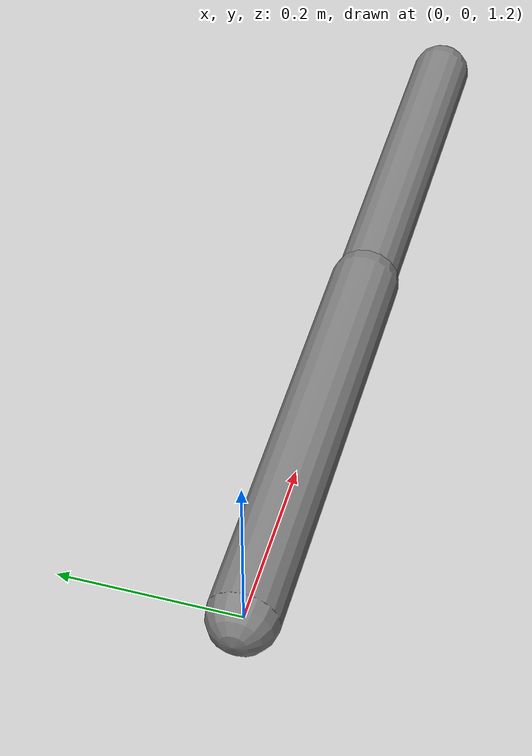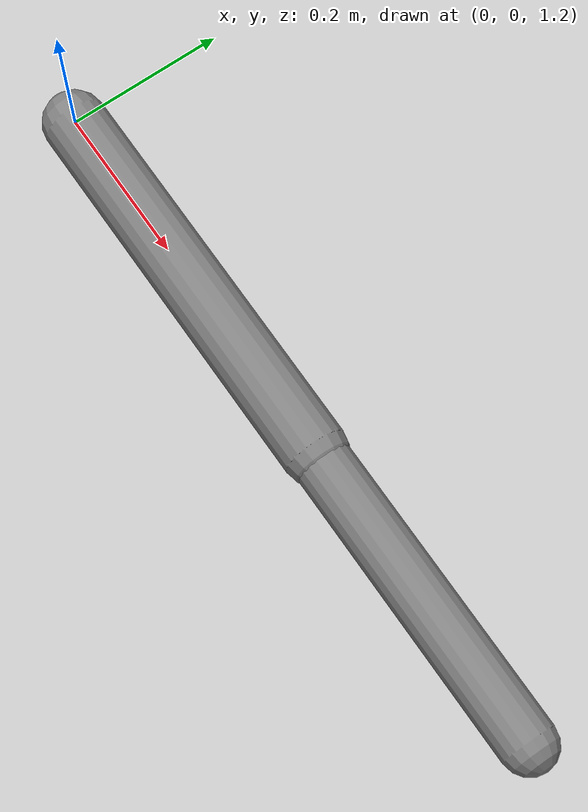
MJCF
<mujoco model="arm2">
  <option gravity="0 0 -9.81" timestep="0.002"/>

  <worldbody>
    <light pos="0 -1 2" dir="0 1 -2"/>

    <!-- Link 1: rotates about the world y-axis at the base. -->
    <body name="link1" pos="0 0 1.2">
      <joint name="j1" type="hinge" axis="0 1 0"/>
      <geom name="g1" type="capsule" fromto="0 0 0 0.5 0 0" size="0.04" mass="1.0"/>

      <!-- Link 2: hinged at the tip of link 1. -->
      <body name="link2" pos="0.5 0 0">
        <joint name="j2" type="hinge" axis="0 1 0"/>
        <geom name="g2" type="capsule" fromto="0 0 0 0.4 0 0" size="0.035" mass="0.6"/>

        <!-- End-effector reference point (tip of link 2). -->
        <site name="ee" pos="0.4 0 0" size="0.02"/>
      </body>
    </body>
  </worldbody>

  <actuator>
    <!-- Direct torque control at each joint; ranges model real motor limits. -->
    <motor joint="j1" ctrlrange="-150 150"/>
    <motor joint="j2" ctrlrange="-80 80"/>
  </actuator>
</mujoco>
